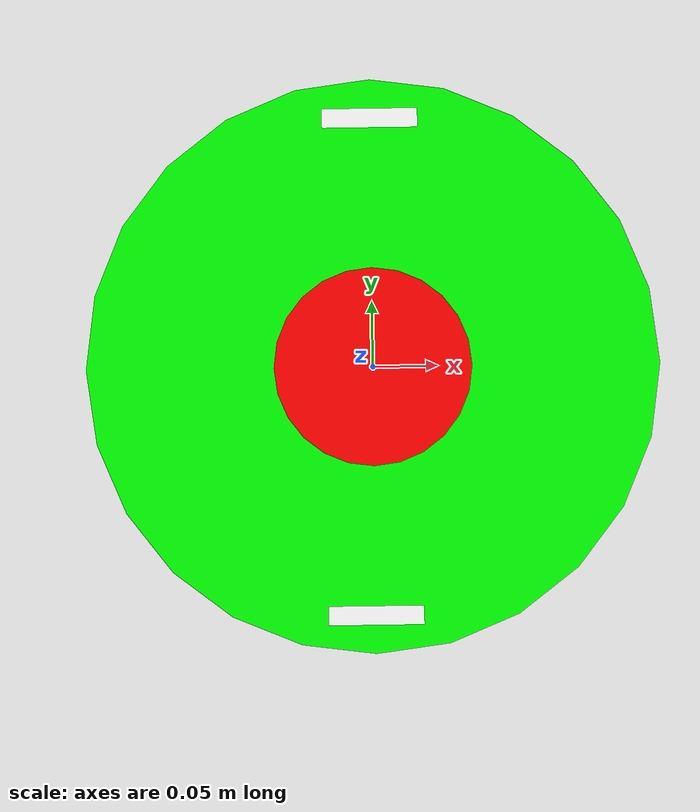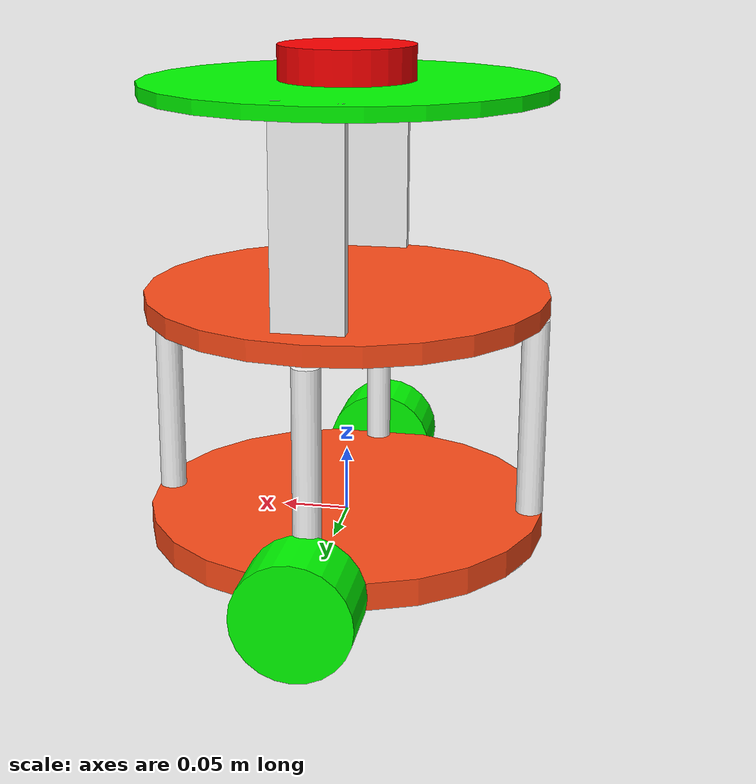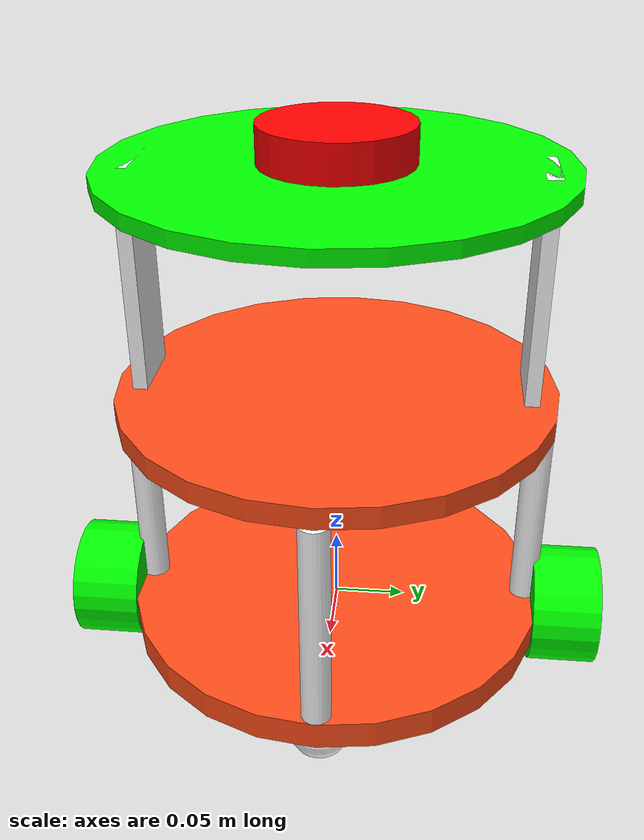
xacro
<?xml version="1.0"?>
<robot xmlns:xacro="http://www.ros.org/wiki/xacro"  name="robot">

    <xacro:arg name="use_ros2_control" default="true"/>
    <xacro:arg name="sim_mode" default="false"/>

    <xacro:include filename="robot_core.xacro" />

    <xacro:if value="$(arg use_ros2_control)">
        <xacro:include filename="ros2_control.xacro" />
    </xacro:if>
    <xacro:unless value="$(arg use_ros2_control)">
        <xacro:include filename="gazebo_control.xacro" />
    </xacro:unless>

    <xacro:include filename="lidar.xacro" />

</robot>

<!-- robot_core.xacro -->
<robot xmlns:xacro="http://www.ros.org/wiki/xacro">

<xacro:include filename="inertial_macros.xacro"/>

<material name="white">
    <color rgba="1 1 1 1" />
</material>

<material name="orange">
    <color rgba="1 0.3 0.1 1" />
</material>

<material name="blue">
    <color rgba="0.2 0.2 1 1" />
</material>

<material name="black">
    <color rgba="0 0 0 1" />
</material>

<material name="yellow">
    <color rgba="1 1 0 0" />
</material>

<material name="green">
    <color rgba="0 1 0 1" />
</material>

<material name="red">
    <color rgba="1 0 0 1" />
</material>

<link name="base_link">

</link>

<joint name="base_footprint_joint" type="fixed">
    <parent link="base_link"/>
    <child link="base_footprint"/>
    <origin xyz="0 0 0" rpy="0 0 0"/>
</joint>

<link name="base_footprint">
</link>

<joint name="chassis_wheel_joint" type="fixed">
    <parent link="base_link"/>
    <child link="base_chassis_wheel"/>
    <origin xyz="0 0 0"/>
</joint>

<link name="base_chassis_wheel">
    <visual>
        <origin xyz="0 0 0" rpy="0 0 0"/>
        <geometry>
            <cylinder radius="0.15" length="0.02"/>
        </geometry>
        <material name="orange"/>
    </visual>
    <collision>
        <origin xyz="0 0 0" rpy="0 0 0"/>
        <geometry>
            <cylinder radius="0.15" length="0.02"/>
        </geometry>
    </collision>
    <xacro:inertial_cylinder mass="0.5" length="0.02" radius="0.15">
            <origin xyz="0 0 0" rpy="0 0 0"/>
    </xacro:inertial_cylinder>

</link>

<gazebo reference="base_chassis_wheel">
    <material>Gazebo/Orange</material>
</gazebo>

<joint name="right_wheel_joint" type="continuous">
    <parent link="base_link"/>
    <child link="right_wheel"/>
    <origin xyz="0 -0.169 0" rpy="1.57 0 0"/>
    <axis xyz="0 0 -1"/>
</joint>

<link name="right_wheel">
    <visual>
        <geometry>
            <cylinder radius="0.0425" length="0.048"/>
        </geometry>
        <material name="green"/>
    </visual>
    <collision>
        <geometry>
            <cylinder radius="0.0425" length="0.048"/>
        </geometry>
    </collision>
    <xacro:inertial_cylinder mass="0.1" length="0.048" radius="0.0425">
            <origin xyz="0 0 0" rpy="0 0 0"/>
    </xacro:inertial_cylinder>
</link>

<gazebo reference="right_wheel">
    <material>Gazebo/Green</material>
</gazebo>

<joint name="left_wheel_joint" type="continuous">
    <parent link="base_link"/>
    <child link="left_wheel"/>
    <origin xyz="0 0.169 0" rpy="-1.57 0 0"/>
    <axis xyz="0 0 1"/>
</joint>

<link name="left_wheel">
    <visual>
        <geometry>
            <cylinder radius="0.0425" length="0.048"/>
        </geometry>
        <material name="green"/>
    </visual>
    <collision>
        <geometry>
            <cylinder radius="0.0425" length="0.048"/>
        </geometry>
    </collision>
    <xacro:inertial_cylinder mass="0.1" length="0.048" radius="0.0425">
            <origin xyz="0 0 0" rpy="0 0 0"/>
    </xacro:inertial_cylinder>
</link>

<gazebo reference="left_wheel">
    <material>Gazebo/Green</material>
</gazebo>

<joint name="caster_wheel_front_joint" type="continuous">
    <parent link="base_chassis_wheel"/>
    <child link="caster_wheel_front"/>
    <origin xyz="0.12 0 -0.02125"  rpy="0 0 0"/>
    <axis xyz="0 1 1"/>
</joint>

<link name="caster_wheel_front">
    <visual>
        <geometry>
            <sphere radius="0.02125"/>
        </geometry>
        <material name="white"/>
    </visual>
    <collision>
        <geometry>
            <sphere radius="0.02125"/>
        </geometry>
    </collision>
    <xacro:inertial_sphere mass="0.1" radius="0.02125">
            <origin xyz="0 0 0" rpy="0 0 0"/>
    </xacro:inertial_sphere>
</link>

<gazebo reference="caster_wheel_front">
    <material>Gazebo/White</material>
</gazebo>

<joint name="caster_wheel_back_joint" type="continuous">
    <parent link="base_chassis_wheel"/>
    <child link="caster_wheel_back"/>
    <origin xyz="-0.12 0 -0.02125" rpy="0 0 0"/>
    <axis xyz="0 1 1"/>
</joint>

<link name="caster_wheel_back">
    <visual>
        <geometry>
            <sphere radius="0.02125"/>
        </geometry>
        <material name="white"/>
    </visual>
    <collision>
        <geometry>
            <sphere radius="0.02125"/>
        </geometry>
    </collision>
    <xacro:inertial_sphere mass="0.1" radius="0.02125">
            <origin xyz="0 0 0" rpy="0 0 0"/>
    </xacro:inertial_sphere>
</link>

<gazebo reference="caster_wheel_back">
    <material>Gazebo/White</material>
</gazebo>

<joint name="columnA_joint" type="fixed">
    <parent link="base_chassis_wheel"/>
    <child link="columnA"/>
    <origin xyz="-0.14 0 0.085"/>
</joint>

<link name="columnA">
    <visual>
        <geometry>
            <cylinder radius="0.01" length="0.15"/>
        </geometry>
        <material name="white"/>
    </visual>
    <collision>
        <geometry>
            <cylinder radius="0.01" length="0.15"/>
        </geometry>
    </collision>
</link>

<joint name="columnB_joint" type="fixed">
    <parent link="base_chassis_wheel"/>
    <child link="columnB"/>
    <origin xyz="0.14 0 0.085"/>
</joint>

<link name="columnB">
    <visual>
        <geometry>
            <cylinder radius="0.01" length="0.15"/>
        </geometry>
        <material name="white"/>
    </visual>
    <collision>
        <geometry>
            <cylinder radius="0.01" length="0.15"/>
        </geometry>
    </collision>
</link>

<link name="columnC">
    <visual>
        <geometry>
            <cylinder radius="0.01" length="0.15"/>
        </geometry>
        <material name="white"/>
    </visual>
    <collision>
        <geometry>
            <cylinder radius="0.01" length="0.15"/>
        </geometry>
    </collision>
</link>

<joint name="columnC_joint" type="fixed">
    <parent link="base_chassis_wheel"/>
    <child link="columnC"/>
    <origin xyz="0 -0.14 0.085"/>
</joint>

<joint name="columnD_joint" type="fixed">
    <parent link="base_chassis_wheel"/>
    <child link="columnD"/>
    <origin xyz="0 0.14 0.085"/>
</joint>

<link name="columnD">
    <visual>
        <geometry>
            <cylinder radius="0.01" length="0.15"/>
        </geometry>
        <material name="white"/>
    </visual>
    <collision>
        <geometry>
            <cylinder radius="0.01" length="0.15"/>
        </geometry>
    </collision>
</link>

<joint name="plateA_joint" type="fixed">
    <parent link="base_chassis_wheel"/>
    <child link="plateA"/>
    <origin xyz="0 0 0.17"/>
</joint>

<link name="plateA">
    <visual>
        <geometry>
            <cylinder radius="0.15" length="0.015"/>
        </geometry>
        <material name="orange"/>
    </visual>
    <collision>
        <geometry>
            <cylinder radius="0.15" length="0.015"/>
        </geometry>
    </collision>
    <xacro:inertial_cylinder mass="0.3" length="0.015" radius="0.15">
            <origin xyz="0 0 0" rpy="0 0 0"/>
    </xacro:inertial_cylinder>
</link>

<gazebo reference="plateA">
    <material>Gazebo/Orange</material>
</gazebo>

<joint name="columnG_joint" type="fixed">
    <parent link="plateA"/>
    <child link="columnG"/>
    <origin xyz="0 -0.13 0.085"/>
</joint>

<link name="columnG">
    <visual>
        <geometry>
            <box size="0.05 0.01 0.15"/>
        </geometry>
        <material name="white"/>
    </visual>
    <collision>
        <geometry>
            <box size="0.05 0.01 0.15"/>
        </geometry>
    </collision>
</link>
<gazebo reference="columnG">
    <material>Gazebo/White</material>
</gazebo>

<joint name="columnH_joint" type="fixed">
    <parent link="plateA"/>
    <child link="columnH"/>
    <origin xyz="0 0.13 0.085"/>
</joint>

<link name="columnH">
    <visual>
        <geometry>
            <box size="0.05 0.01 0.15"/>
        </geometry>
        <material name="white"/>
    </visual>
    <collision>
        <geometry>
            <box size="0.05 0.01 0.15"/>
        </geometry>
    </collision>
</link>

<gazebo reference="columnH">
    <material>Gazebo/White</material>
</gazebo>

<joint name="Topplate_joint" type="fixed">
    <parent link="plateA"/>
    <child link="Topplate"/>
    <origin xyz="0 0 0.155"/>
</joint>

<link name="Topplate">
    <visual>
        <geometry>
            <cylinder radius="0.15" length="0.01"/>
        </geometry>
        <material name="green"/>
    </visual>
    <collision>
        <geometry>
            <cylinder radius="0.15" length="0.01"/>
        </geometry>
    </collision>
    <xacro:inertial_cylinder mass="0.2" length="0.01" radius="0.15">
            <origin xyz="0 0 0" rpy="0 0 0"/>
    </xacro:inertial_cylinder>
</link>

<gazebo reference="Topplate">
    <material>Gazebo/Green</material>
</gazebo>

</robot>

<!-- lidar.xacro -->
<robot xmlns:xacro="http://www.ros.org/wiki/xacro" >

    <joint name="laser_joint" type="fixed">
        <parent link="Topplate"/>
        <child link="laser_frame"/>
        <origin xyz="0 0 0.01" rpy="0 0 0"/>
    </joint>

    <link name="laser_frame">
        <visual>
            <geometry>
                <cylinder radius="0.05" length="0.04"/>
            </geometry>
            <material name="red"/>
        </visual>
        <collision>
            <geometry>
                <cylinder radius="0.05" length="0.04"/>
            </geometry>
        </collision>
        <xacro:inertial_cylinder mass="0.1" length="0.04" radius="0.05">
            <origin xyz="0 0 0" rpy="0 0 0"/>
        </xacro:inertial_cylinder>
    </link>

    <gazebo reference="laser_frame">
        <material>Gazebo/Red</material>

        <sensor name="laser" type="ray">
            <pose> 0 0 0 0 0 0 </pose>
            <visualize>false</visualize>
            <update_rate>10</update_rate>
            <ray>
                <scan>
                    <horizontal>
                        <samples>360</samples>
                        <min_angle>-3.14</min_angle>
                        <max_angle>3.14</max_angle>
                    </horizontal>
                </scan>
                <range>
                    <min>0.3</min>
                    <max>12</max>
                </range>
            </ray>
            <plugin name="laser_controller" filename="libgazebo_ros_ray_sensor.so">
                <ros>
                    <argument>~/out:=scan</argument>
                </ros>
                <output_type>sensor_msgs/LaserScan</output_type>
                <frame_name>laser_frame</frame_name>
            </plugin>
        </sensor>
    </gazebo>

</robot>
